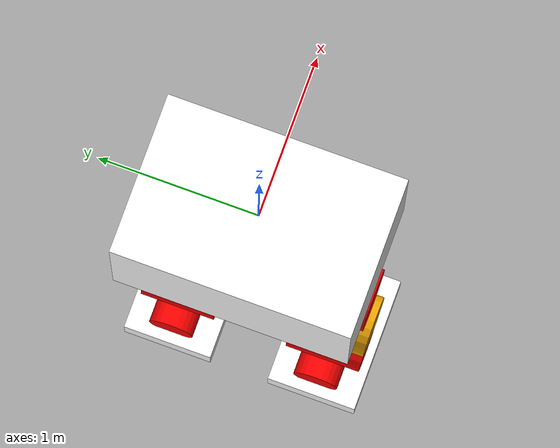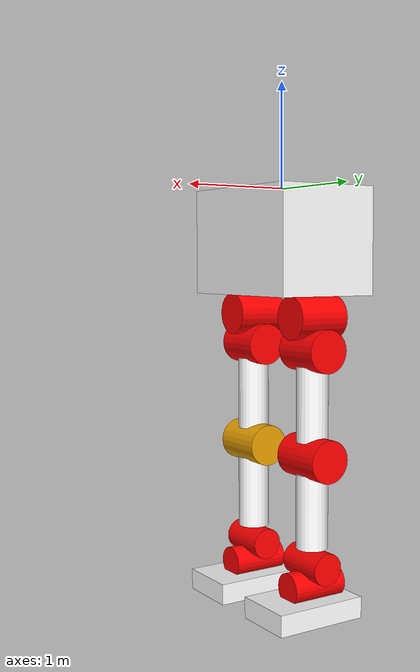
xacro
<?xml version="1.0" ?>

<robot name="Asimo_E1" xmlns:xacro="http://www.ros.org/wiki/xacro">

  <!-- Constants value-->
  <xacro:property name="PI" value="3.1415926535897931"/>
  <!-- color-->
  <material name="white">
        <color rgba="1 1 1 1"/>
  </material>
  <material name="red">
    <color rgba="1 0 0 1"/>
  </material>

  <!-- Link Joint Description-->
  <link name="body">
    <visual>
      <origin rpy="0 0 0" xyz="0 0 -0.5"/>
      <geometry>
        <box size="1 1.5 1"/>
      </geometry>
      <material name="white"/>
    </visual>
  </link>

  <link name="hip_l">
    <visual>
      <origin rpy="${PI/2} 0 ${PI/2}" xyz="0 -0.5 -1.2"/>
      <geometry>
        <cylinder length="0.5" radius="0.2"/>
      </geometry>
      <material name="red"/>
    </visual>
  </link>

  <link name="hip_r">
    <visual>
      <origin rpy="${PI/2}  0 ${PI/2}" xyz="0 0.5 -1.2"/>
      <geometry>
        <cylinder length="0.5" radius="0.2"/>
      </geometry>
      <material name="red"/>
    </visual>
  </link>

  <joint name="body_hip_l" type="fixed">
    <parent link="body"/>
    <child link="hip_l"/>
  </joint>

  <joint name="body_hip_r" type="fixed">
    <parent link="body"/>
    <child link="hip_r"/>
  </joint>

  <link name="lower_hip_r">
    <visual>
      <origin rpy="${PI/2} 0 0" xyz="0 0.5 -1.5"/>
      <geometry>
        <cylinder length="0.5" radius="0.2"/>
      </geometry>
      <material name="red"/>
    </visual>
  </link>

  <link name="lower_hip_l">
    <visual>
      <origin rpy="${PI/2} 0 0" xyz="0 -0.5 -1.5"/>
      <geometry>
        <cylinder length="0.5" radius="0.2"/>
      </geometry>
      <material name="red"/>
    </visual>
  </link>

  <joint name="hip_to_lower_hip_r" type="fixed">
    <parent link="hip_r"/>
    <child link="lower_hip_r"/>
  </joint>

  <joint name="hip_to_lower_hip_l" type="fixed">
    <parent link="hip_l"/>
    <child link="lower_hip_l"/>
  </joint>

  <link name="leg_l">
    <visual>
      <origin rpy="0 0 ${PI/2}" xyz="0 -0.5 -2"/>
      <geometry>
        <cylinder length="0.7" radius="0.15"/>
      </geometry>
      <material name="white"/>
    </visual>
  </link>

  <link name="leg_r">
    <visual>
      <origin rpy="0 0 ${PI/2}" xyz="0 0.5 -2"/>
      <geometry>
        <cylinder length="0.7" radius="0.15"/>
      </geometry>
      <material name="white"/>
    </visual>
  </link>

  <joint name="lower_hip_to_leg_l" type="fixed">
    <parent link="lower_hip_l"/>
    <child link="leg_l"/>
  </joint>

  <joint name="lower_hip_to_leg_r" type="fixed">
    <parent link="lower_hip_r"/>
    <child link="leg_r"/>
  </joint>

  <link name="knee_r">
    <visual>
      <origin rpy="${PI/2} 0 0" xyz="0 0.5 -2.5"/>
      <geometry>
        <cylinder length="0.55" radius="0.2"/>
      </geometry>
      <material name="red"/>
    </visual>
  </link>

  <link name="knee_l">
    <visual>
      <origin rpy="${PI/2} 0 0" xyz="0 -0.5 -2.5"/>
      <geometry>
        <cylinder length="0.55" radius="0.2"/>
      </geometry>
    </visual>
  </link>

  <joint name="leg_to_knee_r" type="fixed">
    <parent link="leg_r"/>
    <child link="knee_r"/>
  </joint>

  <joint name="leg_to_knee_l" type="fixed">
    <parent link="leg_l"/>
    <child link="knee_l"/>
  </joint>

  <link name="foot_l">
    <visual>
      <origin rpy="0 0 ${PI/2}" xyz="0 -0.5 -3"/>
      <geometry>
        <cylinder length="0.7" radius="0.15"/>
      </geometry>
      <material name="white"/>
    </visual>
  </link>

  <link name="foot_r">
    <visual>
      <origin rpy="0 0 ${PI/2}" xyz="0 0.5 -3"/>
      <geometry>
        <cylinder length="0.7" radius="0.15"/>
      </geometry>
        <material name="white"/>
    </visual>
  </link>

  <joint name="knee_to_foot_r" type="fixed">
    <parent link="knee_r"/>
    <child link="foot_r"/>
  </joint>

  <joint name="knee_to_foot_l" type="fixed">
    <parent link="knee_l"/>
    <child link="foot_l"/>
  </joint>

  <link name="ankle_l">
    <visual>
      <origin rpy="${PI/2} 0 0" xyz="0 -0.5 -3.5"/>
      <geometry>
        <cylinder length="0.5" radius="0.15"/>
      </geometry>
      <material name="red"/>
    </visual>
  </link>

  <link name="ankle_r">
    <visual>
      <origin rpy="${PI/2} 0 0" xyz="0 0.5 -3.5"/>
      <geometry>
        <cylinder length="0.5" radius="0.15"/>
      </geometry>
      <material name="red"/>
    </visual>
  </link>

  <joint name="foot_to_ankle_r" type="fixed">
    <parent link="foot_r"/>
    <child link="ankle_r"/>
  </joint>

  <joint name="foot_to_ankle_l" type="fixed">
    <parent link="foot_l"/>
    <child link="ankle_l"/>
  </joint>

  <link name="ankle_lower_l">
    <visual>
      <origin rpy="${PI/2} 0 ${PI/2}" xyz="0 -0.5 -3.7"/>
      <geometry>
        <cylinder length="0.55" radius="0.15"/>
      </geometry>
      <material name="red"/>
    </visual>
  </link>

  <link name="ankle_lower_r">
    <visual>
      <origin rpy="${PI/2} 0 ${PI/2}" xyz="0 0.5 -3.7"/>
      <geometry>
        <cylinder length="0.55" radius="0.15"/>
      </geometry>
      <material name="red"/>
    </visual>
  </link>

  <joint name="ankle_to_ankle_lower_r" type="fixed">
    <parent link="ankle_r"/>
    <child link="ankle_lower_r"/>
  </joint>

  <joint name="ankle_to_ankle_lower_l" type="fixed">
    <parent link="ankle_l"/>
    <child link="ankle_lower_l"/>
  </joint>

  <link name="toe_r">
    <visual>
      <origin rpy="${PI/2} 0 ${PI/2}" xyz="0.1 0.5 -3.9"/>
      <geometry>
        <box size="0.6 0.2 0.9"/>
      </geometry>
        <material name="white"/>
    </visual>
  </link>

  <link name="toe_l">
    <visual>
      <origin rpy="${PI/2} 0 ${PI/2}" xyz="0.1 -0.5 -3.9"/>
      <geometry>
        <box size="0.6 0.2 0.9"/>
      </geometry>
        <material name="white"/>
    </visual>
  </link>

  <joint name="ankle_lower_to_toe_l" type="fixed">
    <parent link="ankle_lower_l"/>
    <child link="toe_l"/>
  </joint>

  <joint name="ankle_lower_to_toe_r" type="fixed">
    <parent link="ankle_lower_r"/>
    <child link="toe_r"/>
  </joint>

</robot>
